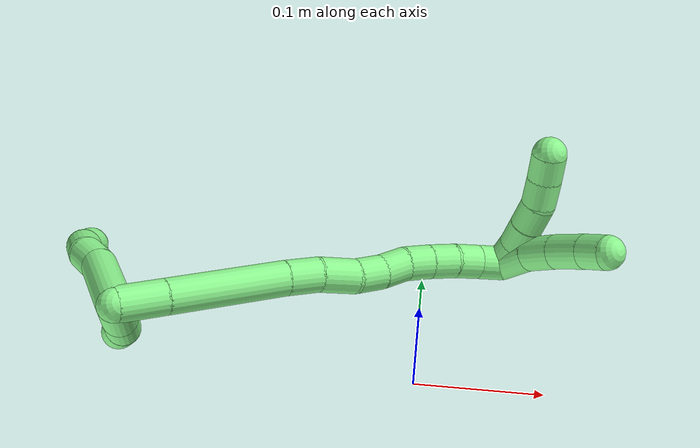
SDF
<sdf version="1.7">
 <world name="default">
  <model name="13">
   <static>0</static>
   <link name="13">
    <collision name="collision-cylinder-e_1_2_8">
     <pose>0.014767 0.01217 -0.027313 -2.72242 0.458712 -1.66376</pose>
     <geometry><cylinder><radius>0.0125</radius><length>0.066699</length></cylinder></geometry>
     <surface>
      <friction><ode><mu>1.16</mu><mu2>1.16</mu2><slip1>0</slip1><slip2>0</slip2></ode></friction>
      <contact><ode><kp>1e+06</kp><kd>1</kd><max_vel>0</max_vel><min_depth>0.001</min_depth></ode></contact>
     </surface>
    </collision>
    <visual name="visual-cylinder-e_1_2_8">
     <pose>0.014767 0.01217 -0.027313 -2.72242 0.458712 -1.66376</pose>
     <geometry><cylinder><radius>0.0125</radius><length>0.066699</length></cylinder></geometry>
     <material><ambient>0.564706 0.984314 0.572549 1</ambient></material>
    </visual>
    <collision name="collision-cylinder-e_2_8_9">
     <pose>0.031976 0.029266 -0.064715 -2.68738 0.214166 -0.870764</pose>
     <geometry><cylinder><radius>0.0125</radius><length>0.022979</length></cylinder></geometry>
     <surface>
      <friction><ode><mu>1.16</mu><mu2>1.16</mu2><slip1>0</slip1><slip2>0</slip2></ode></friction>
      <contact><ode><kp>1e+06</kp><kd>1</kd><max_vel>0</max_vel><min_depth>0.001</min_depth></ode></contact>
     </surface>
    </collision>
    <visual name="visual-cylinder-e_2_8_9">
     <pose>0.031976 0.029266 -0.064715 -2.68738 0.214166 -0.870764</pose>
     <geometry><cylinder><radius>0.0125</radius><length>0.022979</length></cylinder></geometry>
     <material><ambient>0.564706 0.984314 0.572549 1</ambient></material>
    </visual>
    <collision name="collision-cylinder-e_3_9_10">
     <pose>0.039217 0.036474 -0.083419 -2.88273 0.494008 -2.18856</pose>
     <geometry><cylinder><radius>0.0125</radius><length>0.020246</length></cylinder></geometry>
     <surface>
      <friction><ode><mu>1.16</mu><mu2>1.16</mu2><slip1>0</slip1><slip2>0</slip2></ode></friction>
      <contact><ode><kp>1e+06</kp><kd>1</kd><max_vel>0</max_vel><min_depth>0.001</min_depth></ode></contact>
     </surface>
    </collision>
    <visual name="visual-cylinder-e_3_9_10">
     <pose>0.039217 0.036474 -0.083419 -2.88273 0.494008 -2.18856</pose>
     <geometry><cylinder><radius>0.0125</radius><length>0.020246</length></cylinder></geometry>
     <material><ambient>0.564706 0.984314 0.572549 1</ambient></material>
    </visual>
    <collision name="collision-cylinder-e_4_10_11">
     <pose>0.048872 0.037912 -0.10074 3.04497 0.506747 2.7724</pose>
     <geometry><cylinder><radius>0.0125</radius><length>0.020006</length></cylinder></geometry>
     <surface>
      <friction><ode><mu>1.16</mu><mu2>1.16</mu2><slip1>0</slip1><slip2>0</slip2></ode></friction>
      <contact><ode><kp>1e+06</kp><kd>1</kd><max_vel>0</max_vel><min_depth>0.001</min_depth></ode></contact>
     </surface>
    </collision>
    <visual name="visual-cylinder-e_4_10_11">
     <pose>0.048872 0.037912 -0.10074 3.04497 0.506747 2.7724</pose>
     <geometry><cylinder><radius>0.0125</radius><length>0.020006</length></cylinder></geometry>
     <material><ambient>0.564706 0.984314 0.572549 1</ambient></material>
    </visual>
    <collision name="collision-cylinder-e_5_11_6">
     <pose>0.060792 0.037134 -0.116572 -3.13231 0.78099 -3.11903</pose>
     <geometry><cylinder><radius>0.0125</radius><length>0.02007</length></cylinder></geometry>
     <surface>
      <friction><ode><mu>1.16</mu><mu2>1.16</mu2><slip1>0</slip1><slip2>0</slip2></ode></friction>
      <contact><ode><kp>1e+06</kp><kd>1</kd><max_vel>0</max_vel><min_depth>0.001</min_depth></ode></contact>
     </surface>
    </collision>
    <visual name="visual-cylinder-e_5_11_6">
     <pose>0.060792 0.037134 -0.116572 -3.13231 0.78099 -3.11903</pose>
     <geometry><cylinder><radius>0.0125</radius><length>0.02007</length></cylinder></geometry>
     <material><ambient>0.564706 0.984314 0.572549 1</ambient></material>
    </visual>
    <collision name="collision-cylinder-e_1_2_12">
     <pose>0.008231 -0.006582 -0.015064 2.72966 0.464214 1.69388</pose>
     <geometry><cylinder><radius>0.0125</radius><length>0.036768</length></cylinder></geometry>
     <surface>
      <friction><ode><mu>1.16</mu><mu2>1.16</mu2><slip1>0</slip1><slip2>0</slip2></ode></friction>
      <contact><ode><kp>1e+06</kp><kd>1</kd><max_vel>0</max_vel><min_depth>0.001</min_depth></ode></contact>
     </surface>
    </collision>
    <visual name="visual-cylinder-e_1_2_12">
     <pose>0.008231 -0.006582 -0.015064 2.72966 0.464214 1.69388</pose>
     <geometry><cylinder><radius>0.0125</radius><length>0.036768</length></cylinder></geometry>
     <material><ambient>0.564706 0.984314 0.572549 1</ambient></material>
    </visual>
    <collision name="collision-cylinder-e_2_12_13">
     <pose>0.021662 -0.017355 -0.039548 2.72293 0.467093 1.68367</pose>
     <geometry><cylinder><radius>0.0125</radius><length>0.023098</length></cylinder></geometry>
     <surface>
      <friction><ode><mu>1.16</mu><mu2>1.16</mu2><slip1>0</slip1><slip2>0</slip2></ode></friction>
      <contact><ode><kp>1e+06</kp><kd>1</kd><max_vel>0</max_vel><min_depth>0.001</min_depth></ode></contact>
     </surface>
    </collision>
    <visual name="visual-cylinder-e_2_12_13">
     <pose>0.021662 -0.017355 -0.039548 2.72293 0.467093 1.68367</pose>
     <geometry><cylinder><radius>0.0125</radius><length>0.023098</length></cylinder></geometry>
     <material><ambient>0.564706 0.984314 0.572549 1</ambient></material>
    </visual>
    <collision name="collision-cylinder-e_3_13_5">
     <pose>0.03477 -0.024222 -0.067218 2.99607 0.40501 2.45933</pose>
     <geometry><cylinder><radius>0.0125</radius><length>0.040134</length></cylinder></geometry>
     <surface>
      <friction><ode><mu>1.16</mu><mu2>1.16</mu2><slip1>0</slip1><slip2>0</slip2></ode></friction>
      <contact><ode><kp>1e+06</kp><kd>1</kd><max_vel>0</max_vel><min_depth>0.001</min_depth></ode></contact>
     </surface>
    </collision>
    <visual name="visual-cylinder-e_3_13_5">
     <pose>0.03477 -0.024222 -0.067218 2.99607 0.40501 2.45933</pose>
     <geometry><cylinder><radius>0.0125</radius><length>0.040134</length></cylinder></geometry>
     <material><ambient>0.564706 0.984314 0.572549 1</ambient></material>
    </visual>
    <collision name="collision-cylinder-e_1_2_14">
     <pose>0.016554 -0.003697 0.00383 0.767787 1.25968 0.572654</pose>
     <geometry><cylinder><radius>0.0125</radius><length>0.034778</length></cylinder></geometry>
     <surface>
      <friction><ode><mu>1.16</mu><mu2>1.16</mu2><slip1>0</slip1><slip2>0</slip2></ode></friction>
      <contact><ode><kp>1e+06</kp><kd>1</kd><max_vel>0</max_vel><min_depth>0.001</min_depth></ode></contact>
     </surface>
    </collision>
    <visual name="visual-cylinder-e_1_2_14">
     <pose>0.016554 -0.003697 0.00383 0.767787 1.25968 0.572654</pose>
     <geometry><cylinder><radius>0.0125</radius><length>0.034778</length></cylinder></geometry>
     <material><ambient>0.564706 0.984314 0.572549 1</ambient></material>
    </visual>
    <collision name="collision-cylinder-e_2_14_15">
     <pose>0.075074 -0.016716 0.016571 0.807908 1.27265 0.611829</pose>
     <geometry><cylinder><radius>0.0125</radius><length>0.087804</length></cylinder></geometry>
     <surface>
      <friction><ode><mu>1.16</mu><mu2>1.16</mu2><slip1>0</slip1><slip2>0</slip2></ode></friction>
      <contact><ode><kp>1e+06</kp><kd>1</kd><max_vel>0</max_vel><min_depth>0.001</min_depth></ode></contact>
     </surface>
    </collision>
    <visual name="visual-cylinder-e_2_14_15">
     <pose>0.075074 -0.016716 0.016571 0.807908 1.27265 0.611829</pose>
     <geometry><cylinder><radius>0.0125</radius><length>0.087804</length></cylinder></geometry>
     <material><ambient>0.564706 0.984314 0.572549 1</ambient></material>
    </visual>
    <collision name="collision-cylinder-e_3_15_16">
     <pose>0.129008 -0.02923 0.028167 0.871537 1.2355 0.638995</pose>
     <geometry><cylinder><radius>0.0125</radius><length>0.02535</length></cylinder></geometry>
     <surface>
      <friction><ode><mu>1.16</mu><mu2>1.16</mu2><slip1>0</slip1><slip2>0</slip2></ode></friction>
      <contact><ode><kp>1e+06</kp><kd>1</kd><max_vel>0</max_vel><min_depth>0.001</min_depth></ode></contact>
     </surface>
    </collision>
    <visual name="visual-cylinder-e_3_15_16">
     <pose>0.129008 -0.02923 0.028167 0.871537 1.2355 0.638995</pose>
     <geometry><cylinder><radius>0.0125</radius><length>0.02535</length></cylinder></geometry>
     <material><ambient>0.564706 0.984314 0.572549 1</ambient></material>
    </visual>
    <collision name="collision-cylinder-e_4_16_17">
     <pose>0.153993 -0.038019 0.033424 1.14002 1.12874 0.770952</pose>
     <geometry><cylinder><radius>0.0125</radius><length>0.028799</length></cylinder></geometry>
     <surface>
      <friction><ode><mu>1.16</mu><mu2>1.16</mu2><slip1>0</slip1><slip2>0</slip2></ode></friction>
      <contact><ode><kp>1e+06</kp><kd>1</kd><max_vel>0</max_vel><min_depth>0.001</min_depth></ode></contact>
     </surface>
    </collision>
    <visual name="visual-cylinder-e_4_16_17">
     <pose>0.153993 -0.038019 0.033424 1.14002 1.12874 0.770952</pose>
     <geometry><cylinder><radius>0.0125</radius><length>0.028799</length></cylinder></geometry>
     <material><ambient>0.564706 0.984314 0.572549 1</ambient></material>
    </visual>
    <collision name="collision-cylinder-e_5_17_18">
     <pose>0.1778 -0.045892 0.037107 1.1164 1.34032 0.919096</pose>
     <geometry><cylinder><radius>0.0125</radius><length>0.02217</length></cylinder></geometry>
     <surface>
      <friction><ode><mu>1.16</mu><mu2>1.16</mu2><slip1>0</slip1><slip2>0</slip2></ode></friction>
      <contact><ode><kp>1e+06</kp><kd>1</kd><max_vel>0</max_vel><min_depth>0.001</min_depth></ode></contact>
     </surface>
    </collision>
    <visual name="visual-cylinder-e_5_17_18">
     <pose>0.1778 -0.045892 0.037107 1.1164 1.34032 0.919096</pose>
     <geometry><cylinder><radius>0.0125</radius><length>0.02217</length></cylinder></geometry>
     <material><ambient>0.564706 0.984314 0.572549 1</ambient></material>
    </visual>
    <collision name="collision-cylinder-e_6_18_19">
     <pose>0.198843 -0.048832 0.040154 0.33068 1.37379 0.272008</pose>
     <geometry><cylinder><radius>0.0125</radius><length>0.020905</length></cylinder></geometry>
     <surface>
      <friction><ode><mu>1.16</mu><mu2>1.16</mu2><slip1>0</slip1><slip2>0</slip2></ode></friction>
      <contact><ode><kp>1e+06</kp><kd>1</kd><max_vel>0</max_vel><min_depth>0.001</min_depth></ode></contact>
     </surface>
    </collision>
    <visual name="visual-cylinder-e_6_18_19">
     <pose>0.198843 -0.048832 0.040154 0.33068 1.37379 0.272008</pose>
     <geometry><cylinder><radius>0.0125</radius><length>0.020905</length></cylinder></geometry>
     <material><ambient>0.564706 0.984314 0.572549 1</ambient></material>
    </visual>
    <collision name="collision-cylinder-e_7_19_20">
     <pose>0.218392 -0.052242 0.044561 0.837847 1.19259 0.586983</pose>
     <geometry><cylinder><radius>0.0125</radius><length>0.020012</length></cylinder></geometry>
     <surface>
      <friction><ode><mu>1.16</mu><mu2>1.16</mu2><slip1>0</slip1><slip2>0</slip2></ode></friction>
      <contact><ode><kp>1e+06</kp><kd>1</kd><max_vel>0</max_vel><min_depth>0.001</min_depth></ode></contact>
     </surface>
    </collision>
    <visual name="visual-cylinder-e_7_19_20">
     <pose>0.218392 -0.052242 0.044561 0.837847 1.19259 0.586983</pose>
     <geometry><cylinder><radius>0.0125</radius><length>0.020012</length></cylinder></geometry>
     <material><ambient>0.564706 0.984314 0.572549 1</ambient></material>
    </visual>
    <collision name="collision-cylinder-e_8_20_21">
     <pose>0.236722 -0.058121 0.050004 0.812069 1.12482 0.529264</pose>
     <geometry><cylinder><radius>0.0125</radius><length>0.02002</length></cylinder></geometry>
     <surface>
      <friction><ode><mu>1.16</mu><mu2>1.16</mu2><slip1>0</slip1><slip2>0</slip2></ode></friction>
      <contact><ode><kp>1e+06</kp><kd>1</kd><max_vel>0</max_vel><min_depth>0.001</min_depth></ode></contact>
     </surface>
    </collision>
    <visual name="visual-cylinder-e_8_20_21">
     <pose>0.236722 -0.058121 0.050004 0.812069 1.12482 0.529264</pose>
     <geometry><cylinder><radius>0.0125</radius><length>0.02002</length></cylinder></geometry>
     <material><ambient>0.564706 0.984314 0.572549 1</ambient></material>
    </visual>
    <collision name="collision-cylinder-e_9_21_22">
     <pose>0.254946 -0.065027 0.054608 1.16195 1.15031 0.804808</pose>
     <geometry><cylinder><radius>0.0125</radius><length>0.020142</length></cylinder></geometry>
     <surface>
      <friction><ode><mu>1.16</mu><mu2>1.16</mu2><slip1>0</slip1><slip2>0</slip2></ode></friction>
      <contact><ode><kp>1e+06</kp><kd>1</kd><max_vel>0</max_vel><min_depth>0.001</min_depth></ode></contact>
     </surface>
    </collision>
    <visual name="visual-cylinder-e_9_21_22">
     <pose>0.254946 -0.065027 0.054608 1.16195 1.15031 0.804808</pose>
     <geometry><cylinder><radius>0.0125</radius><length>0.020142</length></cylinder></geometry>
     <material><ambient>0.564706 0.984314 0.572549 1</ambient></material>
    </visual>
    <collision name="collision-cylinder-e_10_22_1">
     <pose>0.272592 -0.072751 0.059868 0.828572 1.00538 0.474432</pose>
     <geometry><cylinder><radius>0.0125</radius><length>0.020019</length></cylinder></geometry>
     <surface>
      <friction><ode><mu>1.16</mu><mu2>1.16</mu2><slip1>0</slip1><slip2>0</slip2></ode></friction>
      <contact><ode><kp>1e+06</kp><kd>1</kd><max_vel>0</max_vel><min_depth>0.001</min_depth></ode></contact>
     </surface>
    </collision>
    <visual name="visual-cylinder-e_10_22_1">
     <pose>0.272592 -0.072751 0.059868 0.828572 1.00538 0.474432</pose>
     <geometry><cylinder><radius>0.0125</radius><length>0.020019</length></cylinder></geometry>
     <material><ambient>0.564706 0.984314 0.572549 1</ambient></material>
    </visual>
    <collision name="collision-cylinder-e_1_1_23">
     <pose>0.282466 -0.071275 0.07177 -0.580378 0.142708 -0.042681</pose>
     <geometry><cylinder><radius>0.0125</radius><length>0.02</length></cylinder></geometry>
     <surface>
      <friction><ode><mu>1.16</mu><mu2>1.16</mu2><slip1>0</slip1><slip2>0</slip2></ode></friction>
      <contact><ode><kp>1e+06</kp><kd>1</kd><max_vel>0</max_vel><min_depth>0.001</min_depth></ode></contact>
     </surface>
    </collision>
    <visual name="visual-cylinder-e_1_1_23">
     <pose>0.282466 -0.071275 0.07177 -0.580378 0.142708 -0.042681</pose>
     <geometry><cylinder><radius>0.0125</radius><length>0.02</length></cylinder></geometry>
     <material><ambient>0.564706 0.984314 0.572549 1</ambient></material>
    </visual>
    <collision name="collision-cylinder-e_2_23_24">
     <pose>0.284619 -0.059593 0.087816 -0.677892 0.073163 -0.025804</pose>
     <geometry><cylinder><radius>0.0125</radius><length>0.02</length></cylinder></geometry>
     <surface>
      <friction><ode><mu>1.16</mu><mu2>1.16</mu2><slip1>0</slip1><slip2>0</slip2></ode></friction>
      <contact><ode><kp>1e+06</kp><kd>1</kd><max_vel>0</max_vel><min_depth>0.001</min_depth></ode></contact>
     </surface>
    </collision>
    <visual name="visual-cylinder-e_2_23_24">
     <pose>0.284619 -0.059593 0.087816 -0.677892 0.073163 -0.025804</pose>
     <geometry><cylinder><radius>0.0125</radius><length>0.02</length></cylinder></geometry>
     <material><ambient>0.564706 0.984314 0.572549 1</ambient></material>
    </visual>
    <collision name="collision-cylinder-e_3_24_25">
     <pose>0.286499 -0.046934 0.103178 -0.700606 0.115115 -0.0421</pose>
     <geometry><cylinder><radius>0.0125</radius><length>0.02</length></cylinder></geometry>
     <surface>
      <friction><ode><mu>1.16</mu><mu2>1.16</mu2><slip1>0</slip1><slip2>0</slip2></ode></friction>
      <contact><ode><kp>1e+06</kp><kd>1</kd><max_vel>0</max_vel><min_depth>0.001</min_depth></ode></contact>
     </surface>
    </collision>
    <visual name="visual-cylinder-e_3_24_25">
     <pose>0.286499 -0.046934 0.103178 -0.700606 0.115115 -0.0421</pose>
     <geometry><cylinder><radius>0.0125</radius><length>0.02</length></cylinder></geometry>
     <material><ambient>0.564706 0.984314 0.572549 1</ambient></material>
    </visual>
    <collision name="collision-cylinder-e_4_25_26">
     <pose>0.288672 -0.032355 0.116439 -0.964639 0.102646 -0.053776</pose>
     <geometry><cylinder><radius>0.0125</radius><length>0.02</length></cylinder></geometry>
     <surface>
      <friction><ode><mu>1.16</mu><mu2>1.16</mu2><slip1>0</slip1><slip2>0</slip2></ode></friction>
      <contact><ode><kp>1e+06</kp><kd>1</kd><max_vel>0</max_vel><min_depth>0.001</min_depth></ode></contact>
     </surface>
    </collision>
    <visual name="visual-cylinder-e_4_25_26">
     <pose>0.288672 -0.032355 0.116439 -0.964639 0.102646 -0.053776</pose>
     <geometry><cylinder><radius>0.0125</radius><length>0.02</length></cylinder></geometry>
     <material><ambient>0.564706 0.984314 0.572549 1</ambient></material>
    </visual>
    <collision name="collision-cylinder-e_5_26_4">
     <pose>0.289785 -0.016086 0.127979 -0.943048 0.008814 -0.004494</pose>
     <geometry><cylinder><radius>0.0125</radius><length>0.02</length></cylinder></geometry>
     <surface>
      <friction><ode><mu>1.16</mu><mu2>1.16</mu2><slip1>0</slip1><slip2>0</slip2></ode></friction>
      <contact><ode><kp>1e+06</kp><kd>1</kd><max_vel>0</max_vel><min_depth>0.001</min_depth></ode></contact>
     </surface>
    </collision>
    <visual name="visual-cylinder-e_5_26_4">
     <pose>0.289785 -0.016086 0.127979 -0.943048 0.008814 -0.004494</pose>
     <geometry><cylinder><radius>0.0125</radius><length>0.02</length></cylinder></geometry>
     <material><ambient>0.564706 0.984314 0.572549 1</ambient></material>
    </visual>
    <collision name="collision-cylinder-e_1_1_27">
     <pose>0.282145 -0.075362 0.076985 -0.099111 0.081027 -0.004021</pose>
     <geometry><cylinder><radius>0.0125</radius><length>0.027207</length></cylinder></geometry>
     <surface>
      <friction><ode><mu>1.16</mu><mu2>1.16</mu2><slip1>0</slip1><slip2>0</slip2></ode></friction>
      <contact><ode><kp>1e+06</kp><kd>1</kd><max_vel>0</max_vel><min_depth>0.001</min_depth></ode></contact>
     </surface>
    </collision>
    <visual name="visual-cylinder-e_1_1_27">
     <pose>0.282145 -0.075362 0.076985 -0.099111 0.081027 -0.004021</pose>
     <geometry><cylinder><radius>0.0125</radius><length>0.027207</length></cylinder></geometry>
     <material><ambient>0.564706 0.984314 0.572549 1</ambient></material>
    </visual>
    <collision name="collision-cylinder-e_2_27_28">
     <pose>0.283743 -0.075098 0.103041 0.085607 0.039445 0.00169</pose>
     <geometry><cylinder><radius>0.0125</radius><length>0.025239</length></cylinder></geometry>
     <surface>
      <friction><ode><mu>1.16</mu><mu2>1.16</mu2><slip1>0</slip1><slip2>0</slip2></ode></friction>
      <contact><ode><kp>1e+06</kp><kd>1</kd><max_vel>0</max_vel><min_depth>0.001</min_depth></ode></contact>
     </surface>
    </collision>
    <visual name="visual-cylinder-e_2_27_28">
     <pose>0.283743 -0.075098 0.103041 0.085607 0.039445 0.00169</pose>
     <geometry><cylinder><radius>0.0125</radius><length>0.025239</length></cylinder></geometry>
     <material><ambient>0.564706 0.984314 0.572549 1</ambient></material>
    </visual>
    <collision name="collision-cylinder-e_3_28_29">
     <pose>0.283929 -0.077923 0.129233 0.127441 -0.022669 -0.001447</pose>
     <geometry><cylinder><radius>0.0125</radius><length>0.027487</length></cylinder></geometry>
     <surface>
      <friction><ode><mu>1.16</mu><mu2>1.16</mu2><slip1>0</slip1><slip2>0</slip2></ode></friction>
      <contact><ode><kp>1e+06</kp><kd>1</kd><max_vel>0</max_vel><min_depth>0.001</min_depth></ode></contact>
     </surface>
    </collision>
    <visual name="visual-cylinder-e_3_28_29">
     <pose>0.283929 -0.077923 0.129233 0.127441 -0.022669 -0.001447</pose>
     <geometry><cylinder><radius>0.0125</radius><length>0.027487</length></cylinder></geometry>
     <material><ambient>0.564706 0.984314 0.572549 1</ambient></material>
    </visual>
    <collision name="collision-cylinder-e_4_29_3">
     <pose>0.283181 -0.081362 0.152741 0.169748 -0.043547 -0.003706</pose>
     <geometry><cylinder><radius>0.0125</radius><length>0.020067</length></cylinder></geometry>
     <surface>
      <friction><ode><mu>1.16</mu><mu2>1.16</mu2><slip1>0</slip1><slip2>0</slip2></ode></friction>
      <contact><ode><kp>1e+06</kp><kd>1</kd><max_vel>0</max_vel><min_depth>0.001</min_depth></ode></contact>
     </surface>
    </collision>
    <visual name="visual-cylinder-e_4_29_3">
     <pose>0.283181 -0.081362 0.152741 0.169748 -0.043547 -0.003706</pose>
     <geometry><cylinder><radius>0.0125</radius><length>0.020067</length></cylinder></geometry>
     <material><ambient>0.564706 0.984314 0.572549 1</ambient></material>
    </visual>
    <collision name="collision-sphere-3">
     <pose>0.282744 -0.083056 0.162621 0 -0 0</pose>
     <geometry><sphere><radius>0.0125</radius></sphere></geometry>
     <surface>
      <friction><ode><mu>1.16</mu><mu2>1.16</mu2><slip1>0</slip1><slip2>0</slip2></ode></friction>
      <contact><ode><kp>1e+06</kp><kd>1</kd><max_vel>0</max_vel><min_depth>0.001</min_depth></ode></contact>
     </surface>
    </collision>
    <visual name="visual-sphere-3">
     <pose>0.282744 -0.083056 0.162621 0 -0 0</pose>
     <geometry><sphere><radius>0.0125</radius></sphere></geometry>
     <material><ambient>0.564706 0.984314 0.572549 1</ambient></material>
    </visual>
    <collision name="collision-sphere-29">
     <pose>0.283618 -0.079669 0.142861 0 -0 0</pose>
     <geometry><sphere><radius>0.0125</radius></sphere></geometry>
     <surface>
      <friction><ode><mu>1.16</mu><mu2>1.16</mu2><slip1>0</slip1><slip2>0</slip2></ode></friction>
      <contact><ode><kp>1e+06</kp><kd>1</kd><max_vel>0</max_vel><min_depth>0.001</min_depth></ode></contact>
     </surface>
    </collision>
    <visual name="visual-sphere-29">
     <pose>0.283618 -0.079669 0.142861 0 -0 0</pose>
     <geometry><sphere><radius>0.0125</radius></sphere></geometry>
     <material><ambient>0.564706 0.984314 0.572549 1</ambient></material>
    </visual>
    <collision name="collision-sphere-28">
     <pose>0.284241 -0.076176 0.115604 0 -0 0</pose>
     <geometry><sphere><radius>0.0125</radius></sphere></geometry>
     <surface>
      <friction><ode><mu>1.16</mu><mu2>1.16</mu2><slip1>0</slip1><slip2>0</slip2></ode></friction>
      <contact><ode><kp>1e+06</kp><kd>1</kd><max_vel>0</max_vel><min_depth>0.001</min_depth></ode></contact>
     </surface>
    </collision>
    <visual name="visual-sphere-28">
     <pose>0.284241 -0.076176 0.115604 0 -0 0</pose>
     <geometry><sphere><radius>0.0125</radius></sphere></geometry>
     <material><ambient>0.564706 0.984314 0.572549 1</ambient></material>
    </visual>
    <collision name="collision-sphere-27">
     <pose>0.283246 -0.07402 0.090477 0 -0 0</pose>
     <geometry><sphere><radius>0.0125</radius></sphere></geometry>
     <surface>
      <friction><ode><mu>1.16</mu><mu2>1.16</mu2><slip1>0</slip1><slip2>0</slip2></ode></friction>
      <contact><ode><kp>1e+06</kp><kd>1</kd><max_vel>0</max_vel><min_depth>0.001</min_depth></ode></contact>
     </surface>
    </collision>
    <visual name="visual-sphere-27">
     <pose>0.283246 -0.07402 0.090477 0 -0 0</pose>
     <geometry><sphere><radius>0.0125</radius></sphere></geometry>
     <material><ambient>0.564706 0.984314 0.572549 1</ambient></material>
    </visual>
    <collision name="collision-sphere-4">
     <pose>0.289873 -0.007993 0.133852 0 -0 0</pose>
     <geometry><sphere><radius>0.0125</radius></sphere></geometry>
     <surface>
      <friction><ode><mu>1.16</mu><mu2>1.16</mu2><slip1>0</slip1><slip2>0</slip2></ode></friction>
      <contact><ode><kp>1e+06</kp><kd>1</kd><max_vel>0</max_vel><min_depth>0.001</min_depth></ode></contact>
     </surface>
    </collision>
    <visual name="visual-sphere-4">
     <pose>0.289873 -0.007993 0.133852 0 -0 0</pose>
     <geometry><sphere><radius>0.0125</radius></sphere></geometry>
     <material><ambient>0.564706 0.984314 0.572549 1</ambient></material>
    </visual>
    <collision name="collision-sphere-26">
     <pose>0.289697 -0.02418 0.122106 0 -0 0</pose>
     <geometry><sphere><radius>0.0125</radius></sphere></geometry>
     <surface>
      <friction><ode><mu>1.16</mu><mu2>1.16</mu2><slip1>0</slip1><slip2>0</slip2></ode></friction>
      <contact><ode><kp>1e+06</kp><kd>1</kd><max_vel>0</max_vel><min_depth>0.001</min_depth></ode></contact>
     </surface>
    </collision>
    <visual name="visual-sphere-26">
     <pose>0.289697 -0.02418 0.122106 0 -0 0</pose>
     <geometry><sphere><radius>0.0125</radius></sphere></geometry>
     <material><ambient>0.564706 0.984314 0.572549 1</ambient></material>
    </visual>
    <collision name="collision-sphere-25">
     <pose>0.287647 -0.04053 0.110772 0 -0 0</pose>
     <geometry><sphere><radius>0.0125</radius></sphere></geometry>
     <surface>
      <friction><ode><mu>1.16</mu><mu2>1.16</mu2><slip1>0</slip1><slip2>0</slip2></ode></friction>
      <contact><ode><kp>1e+06</kp><kd>1</kd><max_vel>0</max_vel><min_depth>0.001</min_depth></ode></contact>
     </surface>
    </collision>
    <visual name="visual-sphere-25">
     <pose>0.287647 -0.04053 0.110772 0 -0 0</pose>
     <geometry><sphere><radius>0.0125</radius></sphere></geometry>
     <material><ambient>0.564706 0.984314 0.572549 1</ambient></material>
    </visual>
    <collision name="collision-sphere-24">
     <pose>0.28535 -0.053338 0.095584 0 -0 0</pose>
     <geometry><sphere><radius>0.0125</radius></sphere></geometry>
     <surface>
      <friction><ode><mu>1.16</mu><mu2>1.16</mu2><slip1>0</slip1><slip2>0</slip2></ode></friction>
      <contact><ode><kp>1e+06</kp><kd>1</kd><max_vel>0</max_vel><min_depth>0.001</min_depth></ode></contact>
     </surface>
    </collision>
    <visual name="visual-sphere-24">
     <pose>0.28535 -0.053338 0.095584 0 -0 0</pose>
     <geometry><sphere><radius>0.0125</radius></sphere></geometry>
     <material><ambient>0.564706 0.984314 0.572549 1</ambient></material>
    </visual>
    <collision name="collision-sphere-23">
     <pose>0.283888 -0.065848 0.080048 0 -0 0</pose>
     <geometry><sphere><radius>0.0125</radius></sphere></geometry>
     <surface>
      <friction><ode><mu>1.16</mu><mu2>1.16</mu2><slip1>0</slip1><slip2>0</slip2></ode></friction>
      <contact><ode><kp>1e+06</kp><kd>1</kd><max_vel>0</max_vel><min_depth>0.001</min_depth></ode></contact>
     </surface>
    </collision>
    <visual name="visual-sphere-23">
     <pose>0.283888 -0.065848 0.080048 0 -0 0</pose>
     <geometry><sphere><radius>0.0125</radius></sphere></geometry>
     <material><ambient>0.564706 0.984314 0.572549 1</ambient></material>
    </visual>
    <collision name="collision-sphere-1">
     <pose>0.281044 -0.076703 0.063492 0 -0 0</pose>
     <geometry><sphere><radius>0.0125</radius></sphere></geometry>
     <surface>
      <friction><ode><mu>1.16</mu><mu2>1.16</mu2><slip1>0</slip1><slip2>0</slip2></ode></friction>
      <contact><ode><kp>1e+06</kp><kd>1</kd><max_vel>0</max_vel><min_depth>0.001</min_depth></ode></contact>
     </surface>
    </collision>
    <visual name="visual-sphere-1">
     <pose>0.281044 -0.076703 0.063492 0 -0 0</pose>
     <geometry><sphere><radius>0.0125</radius></sphere></geometry>
     <material><ambient>0.564706 0.984314 0.572549 1</ambient></material>
    </visual>
    <collision name="collision-sphere-22">
     <pose>0.26414 -0.068799 0.056243 0 -0 0</pose>
     <geometry><sphere><radius>0.0125</radius></sphere></geometry>
     <surface>
      <friction><ode><mu>1.16</mu><mu2>1.16</mu2><slip1>0</slip1><slip2>0</slip2></ode></friction>
      <contact><ode><kp>1e+06</kp><kd>1</kd><max_vel>0</max_vel><min_depth>0.001</min_depth></ode></contact>
     </surface>
    </collision>
    <visual name="visual-sphere-22">
     <pose>0.26414 -0.068799 0.056243 0 -0 0</pose>
     <geometry><sphere><radius>0.0125</radius></sphere></geometry>
     <material><ambient>0.564706 0.984314 0.572549 1</ambient></material>
    </visual>
    <collision name="collision-sphere-21">
     <pose>0.245753 -0.061254 0.052974 0 -0 0</pose>
     <geometry><sphere><radius>0.0125</radius></sphere></geometry>
     <surface>
      <friction><ode><mu>1.16</mu><mu2>1.16</mu2><slip1>0</slip1><slip2>0</slip2></ode></friction>
      <contact><ode><kp>1e+06</kp><kd>1</kd><max_vel>0</max_vel><min_depth>0.001</min_depth></ode></contact>
     </surface>
    </collision>
    <visual name="visual-sphere-21">
     <pose>0.245753 -0.061254 0.052974 0 -0 0</pose>
     <geometry><sphere><radius>0.0125</radius></sphere></geometry>
     <material><ambient>0.564706 0.984314 0.572549 1</ambient></material>
    </visual>
    <collision name="collision-sphere-6">
     <pose>0.067856 0.0372 -0.123699 0 -0 0</pose>
     <geometry><sphere><radius>0.0125</radius></sphere></geometry>
     <surface>
      <friction><ode><mu>1.16</mu><mu2>1.16</mu2><slip1>0</slip1><slip2>0</slip2></ode></friction>
      <contact><ode><kp>1e+06</kp><kd>1</kd><max_vel>0</max_vel><min_depth>0.001</min_depth></ode></contact>
     </surface>
    </collision>
    <visual name="visual-sphere-6">
     <pose>0.067856 0.0372 -0.123699 0 -0 0</pose>
     <geometry><sphere><radius>0.0125</radius></sphere></geometry>
     <material><ambient>0.564706 0.984314 0.572549 1</ambient></material>
    </visual>
    <collision name="collision-sphere-11">
     <pose>0.053727 0.037068 -0.109445 0 -0 0</pose>
     <geometry><sphere><radius>0.0125</radius></sphere></geometry>
     <surface>
      <friction><ode><mu>1.16</mu><mu2>1.16</mu2><slip1>0</slip1><slip2>0</slip2></ode></friction>
      <contact><ode><kp>1e+06</kp><kd>1</kd><max_vel>0</max_vel><min_depth>0.001</min_depth></ode></contact>
     </surface>
    </collision>
    <visual name="visual-sphere-11">
     <pose>0.053727 0.037068 -0.109445 0 -0 0</pose>
     <geometry><sphere><radius>0.0125</radius></sphere></geometry>
     <material><ambient>0.564706 0.984314 0.572549 1</ambient></material>
    </visual>
    <collision name="collision-sphere-10">
     <pose>0.044017 0.038755 -0.092035 0 -0 0</pose>
     <geometry><sphere><radius>0.0125</radius></sphere></geometry>
     <surface>
      <friction><ode><mu>1.16</mu><mu2>1.16</mu2><slip1>0</slip1><slip2>0</slip2></ode></friction>
      <contact><ode><kp>1e+06</kp><kd>1</kd><max_vel>0</max_vel><min_depth>0.001</min_depth></ode></contact>
     </surface>
    </collision>
    <visual name="visual-sphere-10">
     <pose>0.044017 0.038755 -0.092035 0 -0 0</pose>
     <geometry><sphere><radius>0.0125</radius></sphere></geometry>
     <material><ambient>0.564706 0.984314 0.572549 1</ambient></material>
    </visual>
    <collision name="collision-sphere-9">
     <pose>0.034418 0.034192 -0.074804 0 -0 0</pose>
     <geometry><sphere><radius>0.0125</radius></sphere></geometry>
     <surface>
      <friction><ode><mu>1.16</mu><mu2>1.16</mu2><slip1>0</slip1><slip2>0</slip2></ode></friction>
      <contact><ode><kp>1e+06</kp><kd>1</kd><max_vel>0</max_vel><min_depth>0.001</min_depth></ode></contact>
     </surface>
    </collision>
    <visual name="visual-sphere-9">
     <pose>0.034418 0.034192 -0.074804 0 -0 0</pose>
     <geometry><sphere><radius>0.0125</radius></sphere></geometry>
     <material><ambient>0.564706 0.984314 0.572549 1</ambient></material>
    </visual>
    <collision name="collision-sphere-2">
     <geometry><sphere><radius>0.0125</radius></sphere></geometry>
     <surface>
      <friction><ode><mu>1.16</mu><mu2>1.16</mu2><slip1>0</slip1><slip2>0</slip2></ode></friction>
      <contact><ode><kp>1e+06</kp><kd>1</kd><max_vel>0</max_vel><min_depth>0.001</min_depth></ode></contact>
     </surface>
    </collision>
    <visual name="visual-sphere-2">
     <geometry><sphere><radius>0.0125</radius></sphere></geometry>
     <material><ambient>0.564706 0.984314 0.572549 1</ambient></material>
    </visual>
    <collision name="collision-sphere-19">
     <pose>0.209093 -0.049496 0.042089 0 -0 0</pose>
     <geometry><sphere><radius>0.0125</radius></sphere></geometry>
     <surface>
      <friction><ode><mu>1.16</mu><mu2>1.16</mu2><slip1>0</slip1><slip2>0</slip2></ode></friction>
      <contact><ode><kp>1e+06</kp><kd>1</kd><max_vel>0</max_vel><min_depth>0.001</min_depth></ode></contact>
     </surface>
    </collision>
    <visual name="visual-sphere-19">
     <pose>0.209093 -0.049496 0.042089 0 -0 0</pose>
     <geometry><sphere><radius>0.0125</radius></sphere></geometry>
     <material><ambient>0.564706 0.984314 0.572549 1</ambient></material>
    </visual>
    <collision name="collision-sphere-8">
     <pose>0.029534 0.02434 -0.054626 0 -0 0</pose>
     <geometry><sphere><radius>0.0125</radius></sphere></geometry>
     <surface>
      <friction><ode><mu>1.16</mu><mu2>1.16</mu2><slip1>0</slip1><slip2>0</slip2></ode></friction>
      <contact><ode><kp>1e+06</kp><kd>1</kd><max_vel>0</max_vel><min_depth>0.001</min_depth></ode></contact>
     </surface>
    </collision>
    <visual name="visual-sphere-8">
     <pose>0.029534 0.02434 -0.054626 0 -0 0</pose>
     <geometry><sphere><radius>0.0125</radius></sphere></geometry>
     <material><ambient>0.564706 0.984314 0.572549 1</ambient></material>
    </visual>
    <collision name="collision-sphere-12">
     <pose>0.016462 -0.013163 -0.030127 0 -0 0</pose>
     <geometry><sphere><radius>0.0125</radius></sphere></geometry>
     <surface>
      <friction><ode><mu>1.16</mu><mu2>1.16</mu2><slip1>0</slip1><slip2>0</slip2></ode></friction>
      <contact><ode><kp>1e+06</kp><kd>1</kd><max_vel>0</max_vel><min_depth>0.001</min_depth></ode></contact>
     </surface>
    </collision>
    <visual name="visual-sphere-12">
     <pose>0.016462 -0.013163 -0.030127 0 -0 0</pose>
     <geometry><sphere><radius>0.0125</radius></sphere></geometry>
     <material><ambient>0.564706 0.984314 0.572549 1</ambient></material>
    </visual>
    <collision name="collision-sphere-13">
     <pose>0.026863 -0.021548 -0.048969 0 -0 0</pose>
     <geometry><sphere><radius>0.0125</radius></sphere></geometry>
     <surface>
      <friction><ode><mu>1.16</mu><mu2>1.16</mu2><slip1>0</slip1><slip2>0</slip2></ode></friction>
      <contact><ode><kp>1e+06</kp><kd>1</kd><max_vel>0</max_vel><min_depth>0.001</min_depth></ode></contact>
     </surface>
    </collision>
    <visual name="visual-sphere-13">
     <pose>0.026863 -0.021548 -0.048969 0 -0 0</pose>
     <geometry><sphere><radius>0.0125</radius></sphere></geometry>
     <material><ambient>0.564706 0.984314 0.572549 1</ambient></material>
    </visual>
    <collision name="collision-sphere-5">
     <pose>0.042677 -0.026897 -0.085467 0 -0 0</pose>
     <geometry><sphere><radius>0.0125</radius></sphere></geometry>
     <surface>
      <friction><ode><mu>1.16</mu><mu2>1.16</mu2><slip1>0</slip1><slip2>0</slip2></ode></friction>
      <contact><ode><kp>1e+06</kp><kd>1</kd><max_vel>0</max_vel><min_depth>0.001</min_depth></ode></contact>
     </surface>
    </collision>
    <visual name="visual-sphere-5">
     <pose>0.042677 -0.026897 -0.085467 0 -0 0</pose>
     <geometry><sphere><radius>0.0125</radius></sphere></geometry>
     <material><ambient>0.564706 0.984314 0.572549 1</ambient></material>
    </visual>
    <collision name="collision-sphere-14">
     <pose>0.033108 -0.007394 0.007659 0 -0 0</pose>
     <geometry><sphere><radius>0.0125</radius></sphere></geometry>
     <surface>
      <friction><ode><mu>1.16</mu><mu2>1.16</mu2><slip1>0</slip1><slip2>0</slip2></ode></friction>
      <contact><ode><kp>1e+06</kp><kd>1</kd><max_vel>0</max_vel><min_depth>0.001</min_depth></ode></contact>
     </surface>
    </collision>
    <visual name="visual-sphere-14">
     <pose>0.033108 -0.007394 0.007659 0 -0 0</pose>
     <geometry><sphere><radius>0.0125</radius></sphere></geometry>
     <material><ambient>0.564706 0.984314 0.572549 1</ambient></material>
    </visual>
    <collision name="collision-sphere-15">
     <pose>0.117039 -0.026038 0.025482 0 -0 0</pose>
     <geometry><sphere><radius>0.0125</radius></sphere></geometry>
     <surface>
      <friction><ode><mu>1.16</mu><mu2>1.16</mu2><slip1>0</slip1><slip2>0</slip2></ode></friction>
      <contact><ode><kp>1e+06</kp><kd>1</kd><max_vel>0</max_vel><min_depth>0.001</min_depth></ode></contact>
     </surface>
    </collision>
    <visual name="visual-sphere-15">
     <pose>0.117039 -0.026038 0.025482 0 -0 0</pose>
     <geometry><sphere><radius>0.0125</radius></sphere></geometry>
     <material><ambient>0.564706 0.984314 0.572549 1</ambient></material>
    </visual>
    <collision name="collision-sphere-16">
     <pose>0.140978 -0.032422 0.030851 0 -0 0</pose>
     <geometry><sphere><radius>0.0125</radius></sphere></geometry>
     <surface>
      <friction><ode><mu>1.16</mu><mu2>1.16</mu2><slip1>0</slip1><slip2>0</slip2></ode></friction>
      <contact><ode><kp>1e+06</kp><kd>1</kd><max_vel>0</max_vel><min_depth>0.001</min_depth></ode></contact>
     </surface>
    </collision>
    <visual name="visual-sphere-16">
     <pose>0.140978 -0.032422 0.030851 0 -0 0</pose>
     <geometry><sphere><radius>0.0125</radius></sphere></geometry>
     <material><ambient>0.564706 0.984314 0.572549 1</ambient></material>
    </visual>
    <collision name="collision-sphere-17">
     <pose>0.167008 -0.043617 0.035996 0 -0 0</pose>
     <geometry><sphere><radius>0.0125</radius></sphere></geometry>
     <surface>
      <friction><ode><mu>1.16</mu><mu2>1.16</mu2><slip1>0</slip1><slip2>0</slip2></ode></friction>
      <contact><ode><kp>1e+06</kp><kd>1</kd><max_vel>0</max_vel><min_depth>0.001</min_depth></ode></contact>
     </surface>
    </collision>
    <visual name="visual-sphere-17">
     <pose>0.167008 -0.043617 0.035996 0 -0 0</pose>
     <geometry><sphere><radius>0.0125</radius></sphere></geometry>
     <material><ambient>0.564706 0.984314 0.572549 1</ambient></material>
    </visual>
    <collision name="collision-sphere-18">
     <pose>0.188592 -0.048167 0.038219 0 -0 0</pose>
     <geometry><sphere><radius>0.0125</radius></sphere></geometry>
     <surface>
      <friction><ode><mu>1.16</mu><mu2>1.16</mu2><slip1>0</slip1><slip2>0</slip2></ode></friction>
      <contact><ode><kp>1e+06</kp><kd>1</kd><max_vel>0</max_vel><min_depth>0.001</min_depth></ode></contact>
     </surface>
    </collision>
    <visual name="visual-sphere-18">
     <pose>0.188592 -0.048167 0.038219 0 -0 0</pose>
     <geometry><sphere><radius>0.0125</radius></sphere></geometry>
     <material><ambient>0.564706 0.984314 0.572549 1</ambient></material>
    </visual>
    <collision name="collision-sphere-20">
     <pose>0.227691 -0.054988 0.047033 0 -0 0</pose>
     <geometry><sphere><radius>0.0125</radius></sphere></geometry>
     <surface>
      <friction><ode><mu>1.16</mu><mu2>1.16</mu2><slip1>0</slip1><slip2>0</slip2></ode></friction>
      <contact><ode><kp>1e+06</kp><kd>1</kd><max_vel>0</max_vel><min_depth>0.001</min_depth></ode></contact>
     </surface>
    </collision>
    <visual name="visual-sphere-20">
     <pose>0.227691 -0.054988 0.047033 0 -0 0</pose>
     <geometry><sphere><radius>0.0125</radius></sphere></geometry>
     <material><ambient>0.564706 0.984314 0.572549 1</ambient></material>
    </visual>
    <inertial>
     <pose>0.142065 -0.027439 0.022742 0 -0 0</pose>
     <mass>0.75</mass>
     <inertia>
      <ixx>5.6e-05</ixx>
      <ixy>0</ixy>
      <ixz>0</ixz>
      <iyy>0.000106</iyy>
      <iyz>0</iyz>
      <izz>-8.9e-05</izz>
     </inertia>
    </inertial>
   </link>
   <pose>-0.196516 -0.072262 0.176058 0.753524 0.293993 0.821648</pose>
  </model>
 </world>
</sdf>
